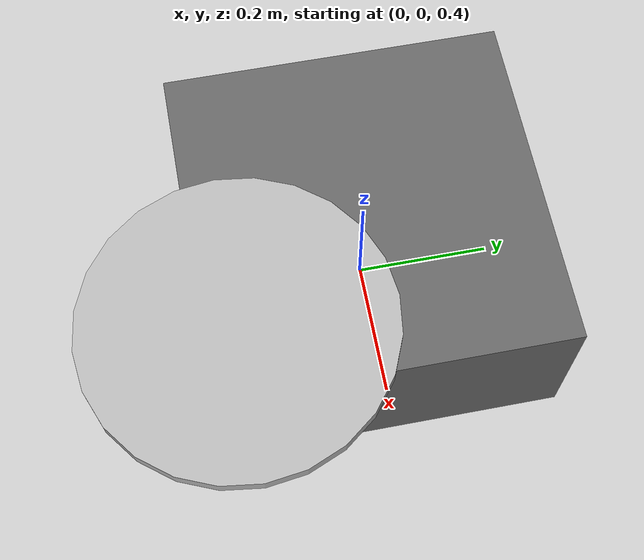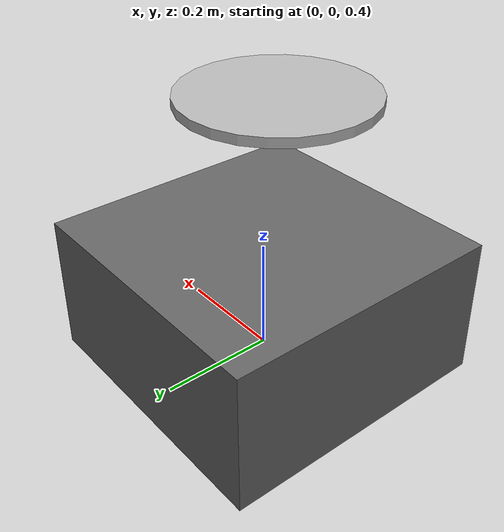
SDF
<?xml version="1.0"?>
<sdf version="1.8">
  <model name="m300_rtk">

    <!-- 基础属性 -->
    <pose>0 0 0.5 0 0 0</pose>

    <!-- 主体链接 -->
    <link name="base_link">
      <inertial>
        <mass>6.3</mass>
        <inertia>
          <ixx>0.13</ixx>
          <ixy>0.0</ixy>
          <ixz>0.0</ixz>
          <iyy>0.13</iyy>
          <iyz>0.0</iyz>
          <izz>0.23</izz>
        </inertia>
      </inertial>

      <!-- 碰撞体 -->
      <collision name="body_collision">
        <geometry>
          <box>
            <size>0.5 0.5 0.25</size>
          </box>
        </geometry>
      </collision>

      <!-- 外观 -->
      <visual name="body_visual">
        <geometry>
          <box>
            <size>0.5 0.5 0.25</size>
          </box>
        </geometry>
        <material>
          <ambient>0.2 0.2 0.2</ambient>
          <diffuse>0.4 0.4 0.4</diffuse>
          <specular>0.1 0.1 0.1</specular>
        </material>
      </visual>

      <!-- GPS 传感器 -->
      <sensor name="gps_sensor" type="navsat">
        <always_on>true</always_on>
        <update_rate>10</update_rate>
        <navsat>
          <noise>
            <type>GAUSSIAN</type>
            <mean>0 0 0</mean>
            <stddev>0.5 0.5 1.0</stddev>
          </noise>
        </navsat>
      </sensor>

      <!-- IMU 传感器 -->
      <sensor name="imu_sensor" type="imu">
        <always_on>true</always_on>
        <update_rate>100</update_rate>
        <imu>
          <angular_velocity>
            <x>
              <noise type="GAUSSIAN">
                <mean>0</mean>
                <stddev>0.001</stddev>
              </noise>
            </x>
            <y>
              <noise type="GAUSSIAN">
                <mean>0</mean>
                <stddev>0.001</stddev>
              </noise>
            </y>
            <z>
              <noise type="GAUSSIAN">
                <mean>0</mean>
                <stddev>0.001</stddev>
              </noise>
            </z>
          </angular_velocity>
          <linear_acceleration>
            <x>
              <noise type="GAUSSIAN">
                <mean>0</mean>
                <stddev>0.01</stddev>
              </noise>
            </x>
            <y>
              <noise type="GAUSSIAN">
                <mean>0</mean>
                <stddev>0.01</stddev>
              </noise>
            </y>
            <z>
              <noise type="GAUSSIAN">
                <mean>0</mean>
                <stddev>0.01</stddev>
              </noise>
            </z>
          </linear_acceleration>
        </imu>
      </sensor>
    </link>

    <!-- 四旋翼螺旋桨 (简化) -->
    <!-- 电机1 - 前右 -->
    <link name="rotor_1">
      <pose>0.2 -0.2 0.25 0 0 0</pose>
      <inertial>
        <mass>0.05</mass>
        <inertia>
          <ixx>0.0001</ixx><ixy>0</ixy><ixz>0</ixz>
          <iyy>0.0001</iyy><iyz>0</iyz>
          <izz>0.0002</izz>
        </inertia>
      </inertial>
      <visual name="rotor1_visual">
        <geometry>
          <cylinder>
            <radius>0.2</radius>
            <length>0.02</length>
          </cylinder>
        </geometry>
      </visual>
    </link>

    <!-- 关节 (固定连接) -->
    <joint name="rotor1_joint" type="fixed">
      <parent>base_link</parent>
      <child>rotor_1</child>
    </joint>

  </model>
</sdf>
